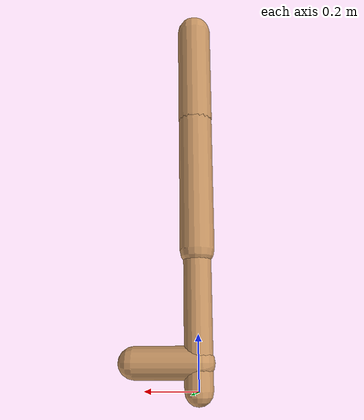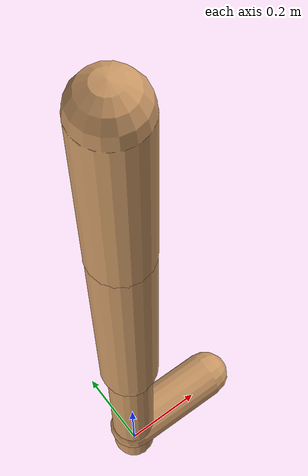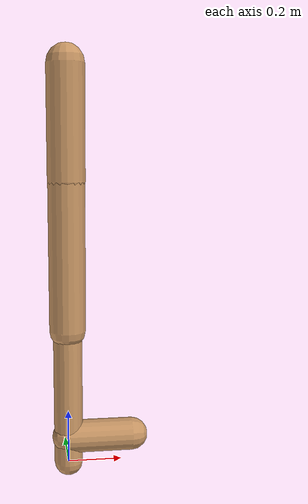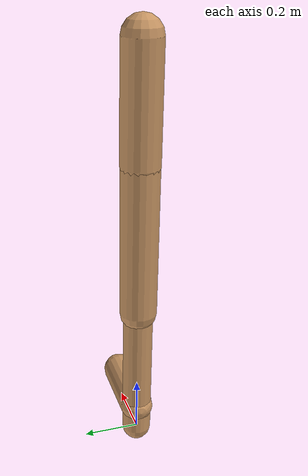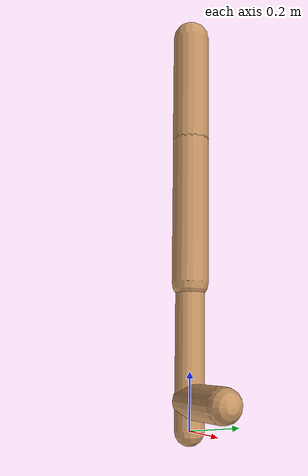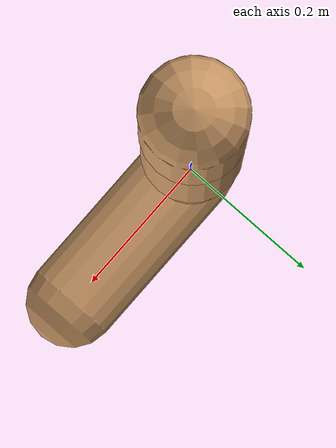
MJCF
<mujoco model="walker2d">
  <compiler angle="degree" coordinate="global" inertiafromgeom="true" />
  <default>
    <joint armature="0.01" damping=".1" limited="true" />
    <geom conaffinity="0" condim="3" contype="1" density="1000" friction="0.8 .1 .1" rgba="0.8 0.6 .4 1" />
  </default>
  <option integrator="RK4" timestep="0.002" />
  <worldbody>

    <body name="torso" pos="0 0 0.18476247085010195">
      <joint armature="0" axis="1 0 0" damping="0" limited="false" name="ignorex" pos="0 0 0" stiffness="0" type="slide" />
      <joint armature="0" axis="0 0 1" damping="0" limited="false" name="ignorez" pos="0 0 0" ref="1.25" stiffness="0" type="slide" />
      <joint armature="0" axis="0 1 0" damping="0" limited="false" name="ignorey" pos="0 0 0" stiffness="0" type="hinge" />
      <geom fromto="0 0 1.45 0 0 1.05" name="torso_geom" size="0.06731160577969875" type="capsule" />
      <body name="thigh">
        <joint axis="0 -1 0" name="thigh_joint" pos="0 0 1.05" range="-150 0" type="hinge" />
        <geom fromto="0.0 0.0 1.05 0.0 0.0 0.512480934860478" name="thigh_geom" size="0.06621115952444585" type="capsule" />
        <body name="leg" pos="0.0 0.0 -0.08751906513952201">
          <joint axis="0 -1 0" name="leg_joint" pos="0 0 0.6" range="-150 0" type="hinge" />
          <geom fromto="0.0 0.0 0.6 0.0 0.0 0.0027565942894200446" name="leg_geom" size="0.05296892761955668" type="capsule" />
          <body name="foot" pos="0.0 0.0 -0.09724340571057996">
            <joint axis="0 -1 0" name="foot_joint" pos="0 0 0.1" range="-45 45" type="hinge" />
            <geom fromto="-0.0 0.0 0.1 0.23894108212203272 0.0 0.1" name="foot_geom" size="0.06059079837074558" type="capsule" />
          </body>
        </body>
      </body>

      <body name="thigh_left">
        <joint axis="0 -1 0" name="thigh_left_joint" pos="0 0 1.05" range="-150 0" type="hinge" />
        <geom fromto="0.0 0.0 1.05 0.0 0.0 0.512480934860478" name="thigh_left_geom" rgba=".7 .3 .6 1" size="0.06621115952444585" type="capsule" />
        <body name="leg_left" pos="0.0 0.0 -0.08751906513952201">
          <joint axis="0 -1 0" name="leg_left_joint" pos="0 0 0.6" range="-150 0" type="hinge" />
          <geom fromto="0.0 0.0 0.6 0.0 0.0 0.0027565942894200446" name="leg_left_geom" rgba=".7 .3 .6 1" size="0.05296892761955668" type="capsule" />
          <body name="foot_left" pos="0.0 0.0 -0.09724340571057996">
            <joint axis="0 -1 0" name="foot_left_joint" pos="0 0 0.1" range="-45 45" type="hinge" />
            <geom fromto="-0.0 0.0 0.1 0.23894108212203272 0.0 0.1" name="foot_left_geom" rgba=".7 .3 .6 1" size="0.06059079837074558" type="capsule" />
          </body>
        </body>
      </body>
    </body>
  </worldbody>
  <actuator>

    <motor ctrllimited="true" ctrlrange="-1.0 1.0" gear="100" joint="thigh_joint" />
    <motor ctrllimited="true" ctrlrange="-1.0 1.0" gear="100" joint="leg_joint" />
    <motor ctrllimited="true" ctrlrange="-1.0 1.0" gear="100" joint="foot_joint" />
    <motor ctrllimited="true" ctrlrange="-1.0 1.0" gear="100" joint="thigh_left_joint" />
    <motor ctrllimited="true" ctrlrange="-1.0 1.0" gear="100" joint="leg_left_joint" />
    <motor ctrllimited="true" ctrlrange="-1.0 1.0" gear="100" joint="foot_left_joint" />

  </actuator>
</mujoco>
